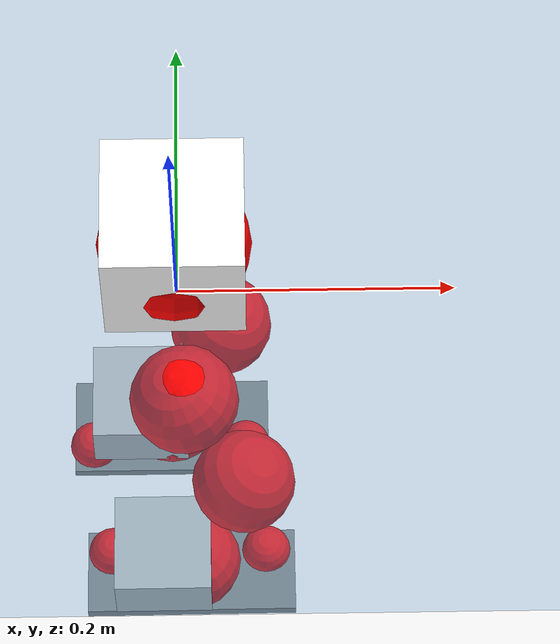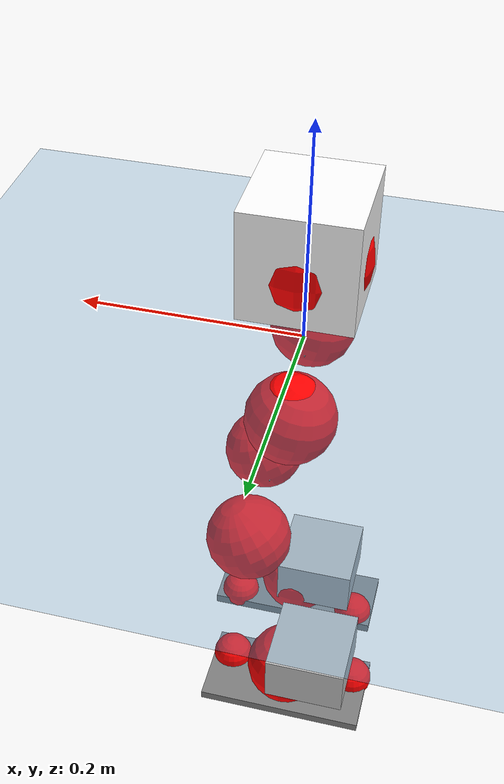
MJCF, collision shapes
<mujoco model="pi_12dof_release_v1">
  <compiler angle="radian" assetdir="assets" balanceinertia="true" inertiafromgeom="false"/>

  <option timestep="0.005" density="1.2" viscosity="2e-05"/>

  <size nkey="1"/>

  <visual>
    <quality shadowsize="8192"/>
    <map shadowclip="0.5"/>
  </visual>

  <default>
    <default class="/">
      <joint armature="0.01" damping="0.01" frictionloss="0.01"/>
      <geom contype="0" conaffinity="0" group="1" solref="-1000 -80"/>
      <site size="0.01 0.005 0.005" group="5"/>
      <general forcelimited="true" biastype="affine" gainprm="20" biasprm="0 -20 -0.5"/>
      <default class="foot">
        <geom size="0.0845 0.036 0.005" type="box" condim="6" group="4" priority="1" friction="0.9 0.2 0.2" solimp="0.015 1 0.005"/>
      </default>
      <default class="reward_collision_sphere">
        <geom group="5" rgba="1 0 0 1"/>
      </default>
    </default>
  </default>

  <asset>
    <texture type="skybox" colorspace="auto" name="//unnamed_texture_0" builtin="gradient" rgb1="0.95 0.95 0.95" rgb2="0.95 0.95 0.95" width="100" height="600"/>
    <texture type="2d" colorspace="auto" name="texplane" builtin="checker" rgb1="0.345 0.575 0.748" rgb2="0.345 0.575 0.748" markrgb="1 1 1" width="512" height="512"/>
    <material name="MatPlane" class="/" texture="texplane" texuniform="true" texrepeat="2 2" specular="0.9"/>
    <mesh name="baselink_1" class="/" file="baselink_1.STL"/>
    <mesh name="r_hip_pitch_link" class="/" file="r_hip_pitch_link.STL"/>
    <mesh name="r_hip_roll_link" class="/" file="r_hip_roll_link.STL"/>
    <mesh name="r_thigh_link" class="/" file="r_thigh_link.STL"/>
    <mesh name="r_calf_link" class="/" file="r_calf_link.STL"/>
    <mesh name="r_ankle_pitch_link" class="/" file="r_ankle_pitch_link.STL"/>
    <mesh name="r_ankle_roll_link" class="/" file="r_ankle_roll_link.STL"/>
    <mesh name="l_hip_pitch_link" class="/" file="l_hip_pitch_link.STL"/>
    <mesh name="l_hip_roll_link" class="/" file="l_hip_roll_link.STL"/>
    <mesh name="l_thigh_link" class="/" file="l_thigh_link.STL"/>
    <mesh name="l_calf_link" class="/" file="l_calf_link.STL"/>
    <mesh name="l_ankle_pitch_link" class="/" file="l_ankle_pitch_link.STL"/>
    <mesh name="l_ankle_roll_link" class="/" file="l_ankle_roll_link.STL"/>
  </asset>

  <worldbody>
    <geom name="floor" class="/" size="100 100 0.125" type="plane" group="0" material="MatPlane"/>
    <light name="toplight_shadow" class="/" pos="0 0 5" dir="0.0990148 0.0990148 -0.990148" type="directional" ambient="0.04 0.04 0.04" diffuse="0.55 0.55 0.55" specular="0.12 0.12 0.12"/>
    <light name="toplight_fill" class="/" pos="0 0 5" dir="0.0990148 0.0990148 -0.990148" type="directional" castshadow="false" ambient="0.04 0.04 0.04" diffuse="0.3 0.3 0.3" specular="0.08 0.08 0.08"/>
    <body name="trunk" pos="0.000293648 -0.00272037 -0.00178429" quat="0.999999 0.000437329 0.000688071 0.00108161">
      <inertial pos="-0.000450291 -0.000853638 0.0496882" quat="0.701874 0.0173126 0.01673 0.711894" mass="2.13511" diaginertia="0.00681724 0.00451785 0.00901529"/>
      <joint name="//unnamed_joint_0" type="free"/>
      <geom name="//unnamed_geom_1" class="/" type="mesh" density="0" rgba="1 1 1 1" mesh="baselink_1"/>
      <geom name="//unnamed_geom_2" class="/" size="0.0494927 0.0494927 0.0494927" pos="0 0 0.093079" type="box" rgba="1 1 1 1"/>
      <geom name="//unnamed_geom_3" class="reward_collision_sphere" size="0.0544419" pos="0 0 0.0814442"/>
      <site name="imu" class="/" pos="0.00385756 -0.00512403 -0.00510134" size="0.00989853"/>
      <camera name="track" class="/" pos="0 -1.74571 0" quat="0.707107 0.707107 0 0" mode="trackcom"/>
      <camera name="ego_camera" class="/" pos="0.0699913 0 0.209428" quat="-0.5 -0.5 0.5 0.5"/>
      <body name="r_hip_pitch_link" pos="0.00243905 -0.0203516 -0.0377926" quat="0.992211 -7.38337e-05 -0.124565 0.000117262">
        <inertial pos="0.00137426 -0.0508332 -0.00175389" quat="-0.0181599 0.705174 -0.0271742 0.708281" mass="0.358699" diaginertia="7.84364e-05 4.84117e-05 0.000180758"/>
        <joint name="r_hip_pitch_joint" class="/" pos="0 0 0" axis="-0.000386514 -0.999999 0.000994119" stiffness="0.00688072" range="-1.69175 1.30414" armature="0.0103762" damping="0.0157715" frictionloss="0.0104187"/>
        <geom name="//unnamed_geom_4" class="/" type="mesh" density="0" rgba="0.75294 0.75294 0.75294 1" mesh="r_hip_pitch_link"/>
        <geom name="//unnamed_geom_5" class="/" size="0.000494927 0.000494927 0.000494927" type="box" rgba="0.75294 0.75294 0.75294 1"/>
        <body name="r_hip_roll_link" pos="0.00231498 -0.0453509 0.00218202" quat="1 5.26681e-05 -4.96027e-05 -5.13213e-05">
          <inertial pos="-0.00137589 -0.00135859 -0.0731277" quat="0.698539 -0.0857734 -0.0851768 0.705288" mass="0.390561" diaginertia="0.000232189 0.000142155 0.000274721"/>
          <joint name="r_hip_roll_joint" class="/" pos="0 0 0" axis="-0.999908 -0.0128219 -0.00446507" range="-0.111201 0.51385" armature="0.0111146" damping="0.0199698" frictionloss="0.0102951"/>
          <geom name="//unnamed_geom_6" class="/" type="mesh" density="0" rgba="0.75294 0.75294 0.75294 1" mesh="r_hip_roll_link"/>
          <geom name="//unnamed_geom_7" class="/" size="0.000494927 0.000494927 0.000494927" type="box" rgba="0.75294 0.75294 0.75294 1"/>
          <geom name="//unnamed_geom_8" class="reward_collision_sphere" size="0.0395941"/>
          <body name="r_thigh_link" pos="0.000512185 0.0059268 -0.0815324" quat="1 1.48082e-05 -8.3144e-06 0.000460073">
            <inertial pos="-0.000991215 -0.00145553 -0.0575346" quat="0.736752 0.676077 0.0105697 -0.00219227" mass="0.108198" diaginertia="8.52013e-05 4.69455e-05 0.000120343"/>
            <joint name="r_thigh_joint" class="/" pos="0 0 0" axis="0.00266223 -0.00641176 -0.999976" range="-0.313801 0.580907" armature="0.0109678" damping="0.00708296" frictionloss="0.0102739"/>
            <geom name="//unnamed_geom_9" class="/" type="mesh" density="0" rgba="0.75294 0.75294 0.75294 1" mesh="r_thigh_link"/>
            <geom name="//unnamed_geom_10" class="/" size="0.000494927 0.000494927 0.000494927" type="box" rgba="0.75294 0.75294 0.75294 1"/>
            <body name="r_calf_link" pos="0.000281729 -0.00152253 -0.0846308" quat="0.947754 -1.56921e-05 0.319003 0.000239043">
              <inertial pos="-0.000828028 0.00184589 -0.0834628" quat="0.999992 -0.00326296 0.000193552 -0.00219291" mass="0.76201" diaginertia="0.00239699 0.00177452 0.000379683"/>
              <joint name="r_calf_joint" class="/" pos="0 0 0" axis="-0.00169911 -0.999998 -0.000751479" range="-1.70673 0.64532" armature="0.00980424" damping="0" frictionloss="0.0105323"/>
              <geom name="//unnamed_geom_11" class="/" type="mesh" density="0" rgba="0.75294 0.75294 0.75294 1" mesh="r_calf_link"/>
              <geom name="//unnamed_geom_12" class="/" size="0.000494927 0.000494927 0.000494927" type="box" rgba="0.75294 0.75294 0.75294 1"/>
              <geom name="//unnamed_geom_13" class="reward_collision_sphere" size="0.0395941"/>
              <body name="r_ankle_pitch_link" pos="-0.00227834 0.00209166 -0.164092" quat="0.980047 -3.11701e-05 -0.198764 0.00014761">
                <inertial pos="0.00703072 0.000408071 0.000824735" quat="0.000339441 0.702257 -0.0103083 0.711849" mass="0.173432" diaginertia="0.00020962 0.000112181 0.000254985"/>
                <joint name="r_ankle_pitch_joint" class="/" pos="0 0 0" axis="0.00415475 -0.99999 0.00138351" range="-1.35144 0.478762" armature="0.0107489" damping="0.0070343" frictionloss="0.0106555"/>
                <geom name="//unnamed_geom_14" class="/" type="mesh" density="0" rgba="0.75294 0.75294 0.75294 1" mesh="r_ankle_pitch_link"/>
                <geom name="//unnamed_geom_15" class="/" size="0.0386043 0.0395941 0.0247463" type="box" rgba="0.75294 0.75294 0.75294 1"/>
                <body name="r_ankle_roll_link" pos="0.0694211 0.00318657 0.00124115" quat="1 -2.20453e-05 0.000150764 0.000232784">
                  <inertial pos="-0.0252024 0.00294885 -0.0177568" quat="0.55201 0.428214 0.434483 0.568456" mass="0.504141" diaginertia="0.00078018 0.000541461 0.000584706"/>
                  <joint name="r_ankle_roll_joint" class="/" pos="0 0 0" axis="-0.999996 -0.0013564 -0.00246965" stiffness="0.00574972" range="-0.147733 0.196157" armature="0.0104006" damping="0.0221101" frictionloss="0.0108035"/>
                  <geom name="//unnamed_geom_16" class="/" type="mesh" density="0" rgba="0.75294 0.75294 0.75294 1" mesh="r_ankle_roll_link"/>
                  <geom name="//unnamed_geom_17" class="/" type="mesh" rgba="0.75294 0.75294 0.75294 1" mesh="r_ankle_roll_link"/>
                  <geom name="right_foot" class="foot" size="0.084849 0.0345598 0.00497325" pos="-0.0475941 0 -0.0511935"/>
                  <geom name="//unnamed_geom_19" class="reward_collision_sphere" size="0.0395941" pos="-0.0466608 0 -0.0232698"/>
                  <geom name="//unnamed_geom_20" class="reward_collision_sphere" size="0.0197971" pos="0.0139983 0.0174571 -0.0465395"/>
                  <geom name="//unnamed_geom_21" class="reward_collision_sphere" size="0.0197971" pos="-0.111986 0.0174571 -0.0465395"/>
                  <site name="right_foot" class="foot" pos="-0.0475941 0 -0.0511935" size="0.00989853"/>
                </body>
              </body>
            </body>
          </body>
        </body>
      </body>
      <body name="l_hip_pitch_link" pos="-0.00344647 0.0233842 -0.035925" quat="0.992207 0.000676433 -0.124599 -0.00014564">
        <inertial pos="0.00135532 0.0458084 0.00281176" quat="-0.0384062 0.702208 0.0298522 0.710308" mass="0.366551" diaginertia="8.76325e-05 4.99043e-05 0.000215781"/>
        <joint name="l_hip_pitch_joint" class="/" pos="0 0 0" axis="-0.00187555 0.999977 -0.00654152" stiffness="0.00443416" range="-1.26167 1.78855" armature="0.0103558" damping="0.00591476" frictionloss="0.00983699"/>
        <geom name="//unnamed_geom_22" class="/" type="mesh" density="0" rgba="0.75294 0.75294 0.75294 1" mesh="l_hip_pitch_link"/>
        <geom name="//unnamed_geom_23" class="/" size="0.000494927 0.000494927 0.000494927" type="box" rgba="0.75294 0.75294 0.75294 1"/>
        <body name="l_hip_roll_link" pos="-0.00107218 0.0461703 0.00274104" quat="1 -0.000133561 0.000393812 0.000224263">
          <inertial pos="-0.00105329 -0.000134494 -0.0693979" quat="0.695499 -0.0690449 -0.086885 0.709905" mass="0.375337" diaginertia="0.00022823 0.000146061 0.000280196"/>
          <joint name="l_hip_roll_joint" class="/" pos="0 0 0" axis="-0.999934 -0.00316702 -0.0110196" stiffness="0.00852996" range="-0.489349 0.149834" armature="0.0100552" damping="0.0028575" frictionloss="0.00849985"/>
          <geom name="//unnamed_geom_24" class="/" type="mesh" density="0" rgba="0.75294 0.75294 0.75294 1" mesh="l_hip_roll_link"/>
          <geom name="//unnamed_geom_25" class="/" size="0.000494927 0.000494927 0.000494927" type="box" rgba="0.75294 0.75294 0.75294 1"/>
          <geom name="//unnamed_geom_26" class="reward_collision_sphere" size="0.0395941"/>
          <body name="l_thigh_link" pos="-0.00305033 -5.01721e-05 -0.0779519" quat="0.999999 0.00096263 0.00102972 -0.000126288">
            <inertial pos="-0.000462164 0.000834757 -0.0549023" quat="0.67771 0.735319 0.00273513 -0.00289804" mass="0.106996" diaginertia="8.56514e-05 4.6482e-05 0.000119989"/>
            <joint name="l_thigh_joint" class="/" pos="0 0 0" axis="0.00224952 -0.000873867 -0.999997" stiffness="0.0101685" range="-0.565784 0.318472" armature="0.00836017" damping="0" frictionloss="0.0108567"/>
            <geom name="//unnamed_geom_27" class="/" type="mesh" density="0" rgba="0.75294 0.75294 0.75294 1" mesh="l_thigh_link"/>
            <geom name="//unnamed_geom_28" class="/" size="0.000494927 0.000494927 0.000494927" type="box" rgba="0.75294 0.75294 0.75294 1"/>
            <body name="l_calf_link" pos="-0.00114996 -0.00115165 -0.0801142" quat="0.94765 7.67164e-05 0.31931 4.62488e-05">
              <inertial pos="-0.000587528 0.000422488 -0.0832418" quat="0.999984 0.00307492 -8.30796e-05 0.00473073" mass="0.762956" diaginertia="0.00240257 0.00174951 0.000358016"/>
              <joint name="l_calf_joint" class="/" pos="0 0 0" axis="-0.0122461 0.999921 0.00289239" stiffness="3.98951e-05" range="-0.613091 1.61466" armature="0.00862688" damping="0.00837473" frictionloss="0.0106554"/>
              <geom name="//unnamed_geom_29" class="/" type="mesh" density="0" rgba="0.75294 0.75294 0.75294 1" mesh="l_calf_link"/>
              <geom name="//unnamed_geom_30" class="/" size="0.000494927 0.000494927 0.000494927" type="box" rgba="0.75294 0.75294 0.75294 1"/>
              <geom name="//unnamed_geom_31" class="reward_collision_sphere" size="0.0395941"/>
              <body name="l_ankle_pitch_link" pos="-0.00261589 0.00290966 -0.166119" quat="0.980269 -6.8957e-05 -0.197665 -0.000412521">
                <inertial pos="0.00524303 -0.00333868 0.000223363" quat="-0.00166183 0.70694 0.00211111 0.707269" mass="0.17626" diaginertia="0.000222146 0.000111381 0.000249518"/>
                <joint name="l_ankle_pitch_joint" class="/" pos="0 0 0" axis="-0.00265512 0.999992 -0.00306541" range="-0.503395 1.31191" armature="0.00922748" damping="0.0173212" frictionloss="0.00851094"/>
                <geom name="//unnamed_geom_32" class="/" type="mesh" density="0" rgba="0.75294 0.75294 0.75294 1" mesh="l_ankle_pitch_link"/>
                <geom name="//unnamed_geom_33" class="/" size="0.0386043 0.0395941 0.0247463" type="box" rgba="0.75294 0.75294 0.75294 1"/>
                <body name="l_ankle_roll_link" pos="0.0720909 -0.000750187 0.00164081" quat="1 -0.000197187 -1.22532e-05 0.000109058">
                  <inertial pos="-0.0260607 -0.000949391 -0.01549" quat="0.559906 0.430704 0.434092 0.559074" mass="0.521032" diaginertia="0.000818022 0.00054129 0.000611153"/>
                  <joint name="l_ankle_roll_joint" class="/" pos="0 0 0" axis="-0.999992 0.00339477 0.00205433" range="-0.143483 0.152703" armature="0.00996103" damping="0" frictionloss="0.00880036"/>
                  <geom name="//unnamed_geom_34" class="/" type="mesh" density="0" rgba="0.75294 0.75294 0.75294 1" mesh="l_ankle_roll_link"/>
                  <geom name="//unnamed_geom_35" class="/" type="mesh" rgba="0.75294 0.75294 0.75294 1" mesh="l_ankle_roll_link"/>
                  <geom name="left_foot" class="foot" size="0.0803402 0.0403094 0.00443052" pos="-0.0475941 0 -0.0511935"/>
                  <geom name="//unnamed_geom_37" class="reward_collision_sphere" size="0.0395941" pos="-0.0466608 0 -0.0232698"/>
                  <geom name="//unnamed_geom_38" class="reward_collision_sphere" size="0.0197971" pos="0.0139983 -0.0174571 -0.0465395"/>
                  <geom name="//unnamed_geom_39" class="reward_collision_sphere" size="0.0197971" pos="-0.111986 -0.0174571 -0.0465395"/>
                  <site name="left_foot" class="foot" pos="-0.0475941 0 -0.0511935" size="0.00989853"/>
                </body>
              </body>
            </body>
          </body>
        </body>
      </body>
    </body>
  </worldbody>

  <contact>
    <pair class="/" geom1="floor" geom2="right_foot" name="//unnamed_contact_1"/>
    <pair class="/" geom1="floor" geom2="left_foot" name="//unnamed_contact_0"/>
  </contact>

  <actuator>
    <general name="r_hip_pitch_joint" class="/" joint="r_hip_pitch_joint" forcerange="-18.9445 18.9445" gainprm="18.5446" biasprm="0 -18.5446 -0.543745"/>
    <general name="r_hip_roll_joint" class="/" joint="r_hip_roll_joint" forcerange="-20.9977 20.9977" gainprm="18.5446" biasprm="0 -18.5446 -0.543745"/>
    <general name="r_thigh_joint" class="/" joint="r_thigh_joint" forcerange="-21.0859 21.0859" gainprm="18.5446" biasprm="0 -18.5446 -0.543745"/>
    <general name="r_calf_joint" class="/" joint="r_calf_joint" forcerange="-20.0254 20.0254" gainprm="18.5446" biasprm="0 -18.5446 -0.543745"/>
    <general name="r_ankle_pitch_joint" class="/" joint="r_ankle_pitch_joint" forcerange="-20.8787 20.8787" gainprm="18.5446" biasprm="0 -18.5446 -0.543745"/>
    <general name="r_ankle_roll_joint" class="/" joint="r_ankle_roll_joint" forcerange="-22.5983 22.5983" gainprm="18.5446" biasprm="0 -18.5446 -0.543745"/>
    <general name="l_hip_pitch_joint" class="/" joint="l_hip_pitch_joint" forcerange="-22.9909 22.9909" gainprm="18.5446" biasprm="0 -18.5446 -0.543745"/>
    <general name="l_hip_roll_joint" class="/" joint="l_hip_roll_joint" forcerange="-20.4157 20.4157" gainprm="18.5446" biasprm="0 -18.5446 -0.543745"/>
    <general name="l_thigh_joint" class="/" joint="l_thigh_joint" forcerange="-20.0654 20.0654" gainprm="18.5446" biasprm="0 -18.5446 -0.543745"/>
    <general name="l_calf_joint" class="/" joint="l_calf_joint" forcerange="-18.6265 18.6265" gainprm="18.5446" biasprm="0 -18.5446 -0.543745"/>
    <general name="l_ankle_pitch_joint" class="/" joint="l_ankle_pitch_joint" forcerange="-21.4911 21.4911" gainprm="18.5446" biasprm="0 -18.5446 -0.543745"/>
    <general name="l_ankle_roll_joint" class="/" joint="l_ankle_roll_joint" forcerange="-18.7922 18.7922" gainprm="18.5446" biasprm="0 -18.5446 -0.543745"/>
  </actuator>

  <sensor>
    <gyro site="imu" name="imu_angular_velocity"/>
    <velocimeter site="imu" name="imu_linear_velocity"/>
    <framelinvel objtype="site" objname="left_foot" name="left_foot_global_linear_velocity"/>
    <framelinvel objtype="site" objname="right_foot" name="right_foot_global_linear_velocity"/>
  </sensor>

  <keyframe>
    <key name="home" qpos="0 0 0.291 1 0 0 0 0.4 0 0 -0.8 0.4 0 -0.4 0 0 0.8 -0.4 0"/>
  </keyframe>
</mujoco>
